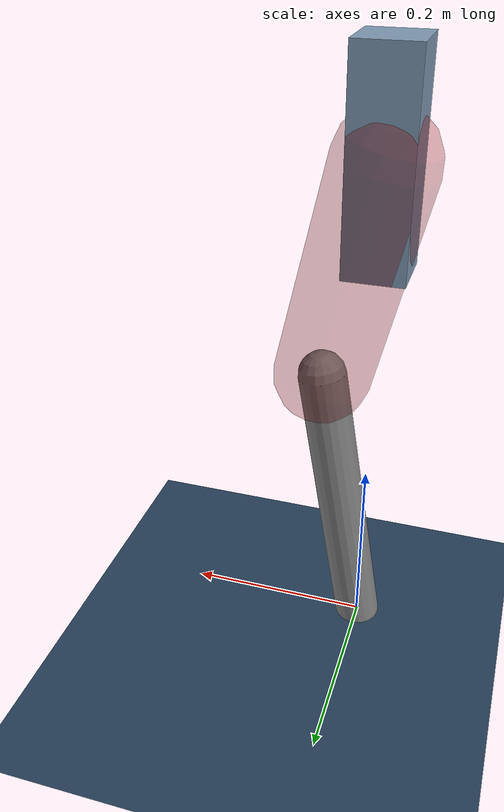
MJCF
<mujoco model="Hopper2D">
	<compiler inertiafromgeom="true" angle="radian" />
	<option timestep="0.001" integrator="implicit" cone="elliptic" solver="Newton" tolerance="1e-10" />

	<default>
		<geom contype="1" conaffinity="1" condim="3" friction="2 0.005 0.0001" solref="0.005 1" />
		<joint limited="true" damping="0.1" />
	</default>

	<asset>
		<texture name="skybox" type="skybox" builtin="gradient" rgb1=".4 .6 .8" rgb2="0 0 0" width="800" height="800" />
		<texture name="grid" type="2d" builtin="checker" rgb1=".1 .2 .3" rgb2=".2 .3 .4" width="300" height="300" mark="edge" markrgb=".2 .3 .4" />
		<material name="ground" texture="grid" texrepeat="1 1" texuniform="true" reflectance="0.1" />
		<material name="leg" rgba="0.5 0.6 0.7 1" />
	</asset>

	<worldbody>

		<geom name="floor" type="plane" size="5 5 0.25" material="ground" />

		<light directional="false" diffuse="0.8 0.8 0.8" specular="0.3 0.3 0.3" pos="0 0 2" dir="0 0 -1" />
		<light mode="targetbodycom" target="base" directional="false" diffuse="0.8 0.8 0.8" specular="0.3 0.3 0.3" pos="0 0 2" dir="0 0 -1" />

		<camera name="fixed" pos="0 -2 1" xyaxes="1 0 0 0 0 1" />
		<camera name="tracking" mode="trackcom" pos="0 -3 1" />

		<body name="root" pos="0 0 0.5318934649738845">
			<joint name="slide_x" type="slide" axis="1 0 0" range="-100 100" />
			<joint name="slide_z" type="slide" axis="0 0 1" range="0 10" />

			<body name="base" pos="0 0 0">
				<geom name="torso" type="box" size="0.03 0.03 0.1" mass="3.268" material="leg" />

				<body name="link1" pos="0 0 0" euler="0 1.3395705061260297 0">
					<joint type="hinge" axis="0 -1 0" pos="0 0 0" name="hinge1" limited="true" range="-3.14 3.14" stiffness="0" damping="0.1" />
					<geom name="thigh" type="capsule" fromto="0 0 0 0.22226363635205176 0 0" size="0.05" rgba="0.5 0 0 0.3" mass="0.7853854545153346" />

					<body name="link2" pos="0.22226363635205176 0 0" euler="0 0.39126861884588826 0">
						<joint type="hinge" axis="0 -1 0" pos="0 0 0" name="hinge2" limited="true" range="-3.14 3.14" stiffness="0" damping="0.1" />
						<geom name="shank" type="capsule" fromto="0 0 0 0.31962982862183276 0 0" size="0.025" mass="0.4994038628974662" />

					</body>
				</body>
			</body>
		</body>
	</worldbody>

	<actuator>
		<motor name="torque1" joint="hinge1" ctrlrange="-163.94234524193268 163.94234524193268" ctrllimited="true" gear="1" />
		<motor name="torque2" joint="hinge2" ctrlrange="-82.14686395956673 82.14686395956673" ctrllimited="true" gear="1" />
	</actuator>
</mujoco>
